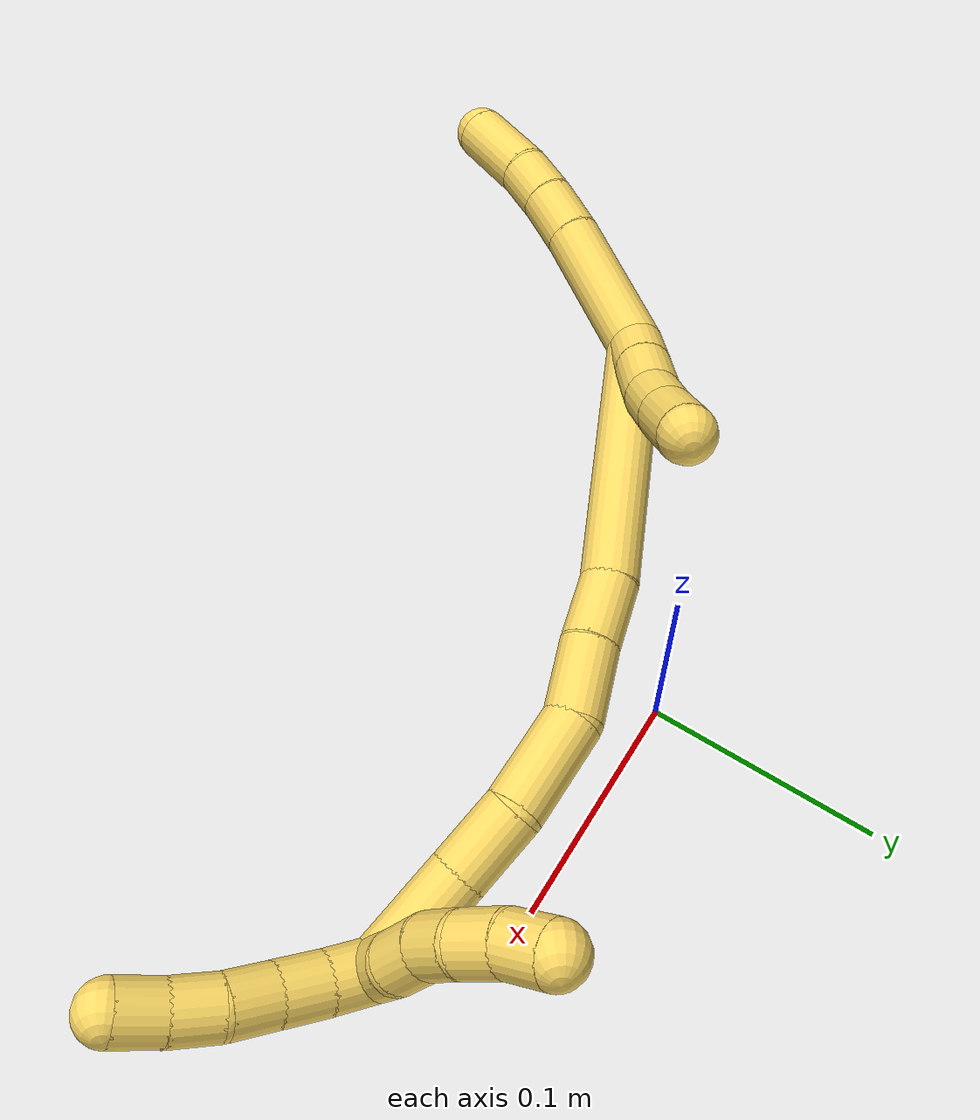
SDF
<sdf version="1.7">
 <world name="default">
  <model name="5">
   <static>0</static>
   <link name="5">
    <collision name="collision-cylinder-e_1_2_8">
     <pose>-0.002314 -0.017945 -0.027391 2.5616 -0.070558 -0.235449</pose>
     <geometry><cylinder><radius>0.0125</radius><length>0.065655</length></cylinder></geometry>
     <surface>
      <friction><ode><mu>1.16</mu><mu2>1.16</mu2><slip1>0</slip1><slip2>0</slip2></ode></friction>
      <contact><ode><kp>1e+06</kp><kd>1</kd><max_vel>0</max_vel><min_depth>0.001</min_depth></ode></contact>
     </surface>
    </collision>
    <visual name="visual-cylinder-e_1_2_8">
     <pose>-0.002314 -0.017945 -0.027391 2.5616 -0.070558 -0.235449</pose>
     <geometry><cylinder><radius>0.0125</radius><length>0.065655</length></cylinder></geometry>
     <material><ambient>1 0.858824 0.4 1</ambient></material>
    </visual>
    <collision name="collision-cylinder-e_2_8_9">
     <pose>-0.004668 -0.042634 -0.065287 2.57101 -0.003121 -0.01064</pose>
     <geometry><cylinder><radius>0.0125</radius><length>0.024967</length></cylinder></geometry>
     <surface>
      <friction><ode><mu>1.16</mu><mu2>1.16</mu2><slip1>0</slip1><slip2>0</slip2></ode></friction>
      <contact><ode><kp>1e+06</kp><kd>1</kd><max_vel>0</max_vel><min_depth>0.001</min_depth></ode></contact>
     </surface>
    </collision>
    <visual name="visual-cylinder-e_2_8_9">
     <pose>-0.004668 -0.042634 -0.065287 2.57101 -0.003121 -0.01064</pose>
     <geometry><cylinder><radius>0.0125</radius><length>0.024967</length></cylinder></geometry>
     <material><ambient>1 0.858824 0.4 1</ambient></material>
    </visual>
    <collision name="collision-cylinder-e_3_9_10">
     <pose>-0.003941 -0.054955 -0.084885 2.59122 0.071627 0.252439</pose>
     <geometry><cylinder><radius>0.0125</radius><length>0.02139</length></cylinder></geometry>
     <surface>
      <friction><ode><mu>1.16</mu><mu2>1.16</mu2><slip1>0</slip1><slip2>0</slip2></ode></friction>
      <contact><ode><kp>1e+06</kp><kd>1</kd><max_vel>0</max_vel><min_depth>0.001</min_depth></ode></contact>
     </surface>
    </collision>
    <visual name="visual-cylinder-e_3_9_10">
     <pose>-0.003941 -0.054955 -0.084885 2.59122 0.071627 0.252439</pose>
     <geometry><cylinder><radius>0.0125</radius><length>0.02139</length></cylinder></geometry>
     <material><ambient>1 0.858824 0.4 1</ambient></material>
    </visual>
    <collision name="collision-cylinder-e_4_10_6">
     <pose>0.000612 -0.069194 -0.110453 2.65765 0.200787 0.775015</pose>
     <geometry><cylinder><radius>0.0125</radius><length>0.037988</length></cylinder></geometry>
     <surface>
      <friction><ode><mu>1.16</mu><mu2>1.16</mu2><slip1>0</slip1><slip2>0</slip2></ode></friction>
      <contact><ode><kp>1e+06</kp><kd>1</kd><max_vel>0</max_vel><min_depth>0.001</min_depth></ode></contact>
     </surface>
    </collision>
    <visual name="visual-cylinder-e_4_10_6">
     <pose>0.000612 -0.069194 -0.110453 2.65765 0.200787 0.775015</pose>
     <geometry><cylinder><radius>0.0125</radius><length>0.037988</length></cylinder></geometry>
     <material><ambient>1 0.858824 0.4 1</ambient></material>
    </visual>
    <collision name="collision-cylinder-e_1_2_11">
     <pose>3e-06 -0.000403 0.010879 0.037035 0.000266 5e-06</pose>
     <geometry><cylinder><radius>0.0125</radius><length>0.021773</length></cylinder></geometry>
     <surface>
      <friction><ode><mu>1.16</mu><mu2>1.16</mu2><slip1>0</slip1><slip2>0</slip2></ode></friction>
      <contact><ode><kp>1e+06</kp><kd>1</kd><max_vel>0</max_vel><min_depth>0.001</min_depth></ode></contact>
     </surface>
    </collision>
    <visual name="visual-cylinder-e_1_2_11">
     <pose>3e-06 -0.000403 0.010879 0.037035 0.000266 5e-06</pose>
     <geometry><cylinder><radius>0.0125</radius><length>0.021773</length></cylinder></geometry>
     <material><ambient>1 0.858824 0.4 1</ambient></material>
    </visual>
    <collision name="collision-cylinder-e_2_11_12">
     <pose>0.000207 -0.001114 0.034324 0.024467 0.016008 0.000196</pose>
     <geometry><cylinder><radius>0.0125</radius><length>0.025143</length></cylinder></geometry>
     <surface>
      <friction><ode><mu>1.16</mu><mu2>1.16</mu2><slip1>0</slip1><slip2>0</slip2></ode></friction>
      <contact><ode><kp>1e+06</kp><kd>1</kd><max_vel>0</max_vel><min_depth>0.001</min_depth></ode></contact>
     </surface>
    </collision>
    <visual name="visual-cylinder-e_2_11_12">
     <pose>0.000207 -0.001114 0.034324 0.024467 0.016008 0.000196</pose>
     <geometry><cylinder><radius>0.0125</radius><length>0.025143</length></cylinder></geometry>
     <material><ambient>1 0.858824 0.4 1</ambient></material>
    </visual>
    <collision name="collision-cylinder-e_3_12_13">
     <pose>-0.001593 -0.002943 0.058699 0.128195 -0.166533 -0.010714</pose>
     <geometry><cylinder><radius>0.0125</radius><length>0.024148</length></cylinder></geometry>
     <surface>
      <friction><ode><mu>1.16</mu><mu2>1.16</mu2><slip1>0</slip1><slip2>0</slip2></ode></friction>
      <contact><ode><kp>1e+06</kp><kd>1</kd><max_vel>0</max_vel><min_depth>0.001</min_depth></ode></contact>
     </surface>
    </collision>
    <visual name="visual-cylinder-e_3_12_13">
     <pose>-0.001593 -0.002943 0.058699 0.128195 -0.166533 -0.010714</pose>
     <geometry><cylinder><radius>0.0125</radius><length>0.024148</length></cylinder></geometry>
     <material><ambient>1 0.858824 0.4 1</ambient></material>
    </visual>
    <collision name="collision-cylinder-e_4_13_5">
     <pose>-0.006768 -0.006888 0.084415 0.172432 -0.221145 -0.019191</pose>
     <geometry><cylinder><radius>0.0125</radius><length>0.028936</length></cylinder></geometry>
     <surface>
      <friction><ode><mu>1.16</mu><mu2>1.16</mu2><slip1>0</slip1><slip2>0</slip2></ode></friction>
      <contact><ode><kp>1e+06</kp><kd>1</kd><max_vel>0</max_vel><min_depth>0.001</min_depth></ode></contact>
     </surface>
    </collision>
    <visual name="visual-cylinder-e_4_13_5">
     <pose>-0.006768 -0.006888 0.084415 0.172432 -0.221145 -0.019191</pose>
     <geometry><cylinder><radius>0.0125</radius><length>0.028936</length></cylinder></geometry>
     <material><ambient>1 0.858824 0.4 1</ambient></material>
    </visual>
    <collision name="collision-cylinder-e_1_2_14">
     <pose>0.0291 0.011871 0.049168 -0.236911 0.522069 -0.063562</pose>
     <geometry><cylinder><radius>0.0125</radius><length>0.116709</length></cylinder></geometry>
     <surface>
      <friction><ode><mu>1.16</mu><mu2>1.16</mu2><slip1>0</slip1><slip2>0</slip2></ode></friction>
      <contact><ode><kp>1e+06</kp><kd>1</kd><max_vel>0</max_vel><min_depth>0.001</min_depth></ode></contact>
     </surface>
    </collision>
    <visual name="visual-cylinder-e_1_2_14">
     <pose>0.0291 0.011871 0.049168 -0.236911 0.522069 -0.063562</pose>
     <geometry><cylinder><radius>0.0125</radius><length>0.116709</length></cylinder></geometry>
     <material><ambient>1 0.858824 0.4 1</ambient></material>
    </visual>
    <collision name="collision-cylinder-e_2_14_15">
     <pose>0.066597 0.024239 0.110482 -0.040799 0.604534 -0.012724</pose>
     <geometry><cylinder><radius>0.0125</radius><length>0.029549</length></cylinder></geometry>
     <surface>
      <friction><ode><mu>1.16</mu><mu2>1.16</mu2><slip1>0</slip1><slip2>0</slip2></ode></friction>
      <contact><ode><kp>1e+06</kp><kd>1</kd><max_vel>0</max_vel><min_depth>0.001</min_depth></ode></contact>
     </surface>
    </collision>
    <visual name="visual-cylinder-e_2_14_15">
     <pose>0.066597 0.024239 0.110482 -0.040799 0.604534 -0.012724</pose>
     <geometry><cylinder><radius>0.0125</radius><length>0.029549</length></cylinder></geometry>
     <material><ambient>1 0.858824 0.4 1</ambient></material>
    </visual>
    <collision name="collision-cylinder-e_3_15_16">
     <pose>0.084269 0.02681 0.136208 -0.151666 0.593814 -0.046483</pose>
     <geometry><cylinder><radius>0.0125</radius><length>0.033151</length></cylinder></geometry>
     <surface>
      <friction><ode><mu>1.16</mu><mu2>1.16</mu2><slip1>0</slip1><slip2>0</slip2></ode></friction>
      <contact><ode><kp>1e+06</kp><kd>1</kd><max_vel>0</max_vel><min_depth>0.001</min_depth></ode></contact>
     </surface>
    </collision>
    <visual name="visual-cylinder-e_3_15_16">
     <pose>0.084269 0.02681 0.136208 -0.151666 0.593814 -0.046483</pose>
     <geometry><cylinder><radius>0.0125</radius><length>0.033151</length></cylinder></geometry>
     <material><ambient>1 0.858824 0.4 1</ambient></material>
    </visual>
    <collision name="collision-cylinder-e_4_16_17">
     <pose>0.109273 0.026088 0.164073 0.193384 0.824138 0.08474</pose>
     <geometry><cylinder><radius>0.0125</radius><length>0.042864</length></cylinder></geometry>
     <surface>
      <friction><ode><mu>1.16</mu><mu2>1.16</mu2><slip1>0</slip1><slip2>0</slip2></ode></friction>
      <contact><ode><kp>1e+06</kp><kd>1</kd><max_vel>0</max_vel><min_depth>0.001</min_depth></ode></contact>
     </surface>
    </collision>
    <visual name="visual-cylinder-e_4_16_17">
     <pose>0.109273 0.026088 0.164073 0.193384 0.824138 0.08474</pose>
     <geometry><cylinder><radius>0.0125</radius><length>0.042864</length></cylinder></geometry>
     <material><ambient>1 0.858824 0.4 1</ambient></material>
    </visual>
    <collision name="collision-cylinder-e_5_17_18">
     <pose>0.139264 0.021909 0.185382 0.194216 1.10556 0.120053</pose>
     <geometry><cylinder><radius>0.0125</radius><length>0.031913</length></cylinder></geometry>
     <surface>
      <friction><ode><mu>1.16</mu><mu2>1.16</mu2><slip1>0</slip1><slip2>0</slip2></ode></friction>
      <contact><ode><kp>1e+06</kp><kd>1</kd><max_vel>0</max_vel><min_depth>0.001</min_depth></ode></contact>
     </surface>
    </collision>
    <visual name="visual-cylinder-e_5_17_18">
     <pose>0.139264 0.021909 0.185382 0.194216 1.10556 0.120053</pose>
     <geometry><cylinder><radius>0.0125</radius><length>0.031913</length></cylinder></geometry>
     <material><ambient>1 0.858824 0.4 1</ambient></material>
    </visual>
    <collision name="collision-cylinder-e_6_18_1">
     <pose>0.173359 0.017607 0.203489 0.257638 1.04683 0.149235</pose>
     <geometry><cylinder><radius>0.0125</radius><length>0.045815</length></cylinder></geometry>
     <surface>
      <friction><ode><mu>1.16</mu><mu2>1.16</mu2><slip1>0</slip1><slip2>0</slip2></ode></friction>
      <contact><ode><kp>1e+06</kp><kd>1</kd><max_vel>0</max_vel><min_depth>0.001</min_depth></ode></contact>
     </surface>
    </collision>
    <visual name="visual-cylinder-e_6_18_1">
     <pose>0.173359 0.017607 0.203489 0.257638 1.04683 0.149235</pose>
     <geometry><cylinder><radius>0.0125</radius><length>0.045815</length></cylinder></geometry>
     <material><ambient>1 0.858824 0.4 1</ambient></material>
    </visual>
    <collision name="collision-cylinder-e_1_1_19">
     <pose>0.199152 0.007276 0.217666 1.17529 0.638367 0.433389</pose>
     <geometry><cylinder><radius>0.0125</radius><length>0.02</length></cylinder></geometry>
     <surface>
      <friction><ode><mu>1.16</mu><mu2>1.16</mu2><slip1>0</slip1><slip2>0</slip2></ode></friction>
      <contact><ode><kp>1e+06</kp><kd>1</kd><max_vel>0</max_vel><min_depth>0.001</min_depth></ode></contact>
     </surface>
    </collision>
    <visual name="visual-cylinder-e_1_1_19">
     <pose>0.199152 0.007276 0.217666 1.17529 0.638367 0.433389</pose>
     <geometry><cylinder><radius>0.0125</radius><length>0.02</length></cylinder></geometry>
     <material><ambient>1 0.858824 0.4 1</ambient></material>
    </visual>
    <collision name="collision-cylinder-e_2_19_20">
     <pose>0.210413 -0.007996 0.223934 1.18703 0.558838 0.382424</pose>
     <geometry><cylinder><radius>0.0125</radius><length>0.02</length></cylinder></geometry>
     <surface>
      <friction><ode><mu>1.16</mu><mu2>1.16</mu2><slip1>0</slip1><slip2>0</slip2></ode></friction>
      <contact><ode><kp>1e+06</kp><kd>1</kd><max_vel>0</max_vel><min_depth>0.001</min_depth></ode></contact>
     </surface>
    </collision>
    <visual name="visual-cylinder-e_2_19_20">
     <pose>0.210413 -0.007996 0.223934 1.18703 0.558838 0.382424</pose>
     <geometry><cylinder><radius>0.0125</radius><length>0.02</length></cylinder></geometry>
     <material><ambient>1 0.858824 0.4 1</ambient></material>
    </visual>
    <collision name="collision-cylinder-e_3_20_21">
     <pose>0.220387 -0.023946 0.230681 1.15484 0.486119 0.320319</pose>
     <geometry><cylinder><radius>0.0125</radius><length>0.02</length></cylinder></geometry>
     <surface>
      <friction><ode><mu>1.16</mu><mu2>1.16</mu2><slip1>0</slip1><slip2>0</slip2></ode></friction>
      <contact><ode><kp>1e+06</kp><kd>1</kd><max_vel>0</max_vel><min_depth>0.001</min_depth></ode></contact>
     </surface>
    </collision>
    <visual name="visual-cylinder-e_3_20_21">
     <pose>0.220387 -0.023946 0.230681 1.15484 0.486119 0.320319</pose>
     <geometry><cylinder><radius>0.0125</radius><length>0.02</length></cylinder></geometry>
     <material><ambient>1 0.858824 0.4 1</ambient></material>
    </visual>
    <collision name="collision-cylinder-e_4_21_22">
     <pose>0.230424 -0.040289 0.236003 1.36204 0.566312 0.463122</pose>
     <geometry><cylinder><radius>0.0125</radius><length>0.02</length></cylinder></geometry>
     <surface>
      <friction><ode><mu>1.16</mu><mu2>1.16</mu2><slip1>0</slip1><slip2>0</slip2></ode></friction>
      <contact><ode><kp>1e+06</kp><kd>1</kd><max_vel>0</max_vel><min_depth>0.001</min_depth></ode></contact>
     </surface>
    </collision>
    <visual name="visual-cylinder-e_4_21_22">
     <pose>0.230424 -0.040289 0.236003 1.36204 0.566312 0.463122</pose>
     <geometry><cylinder><radius>0.0125</radius><length>0.02</length></cylinder></geometry>
     <material><ambient>1 0.858824 0.4 1</ambient></material>
    </visual>
    <collision name="collision-cylinder-e_5_22_4">
     <pose>0.24015 -0.05743 0.239179 1.41148 0.451273 0.386337</pose>
     <geometry><cylinder><radius>0.0125</radius><length>0.02</length></cylinder></geometry>
     <surface>
      <friction><ode><mu>1.16</mu><mu2>1.16</mu2><slip1>0</slip1><slip2>0</slip2></ode></friction>
      <contact><ode><kp>1e+06</kp><kd>1</kd><max_vel>0</max_vel><min_depth>0.001</min_depth></ode></contact>
     </surface>
    </collision>
    <visual name="visual-cylinder-e_5_22_4">
     <pose>0.24015 -0.05743 0.239179 1.41148 0.451273 0.386337</pose>
     <geometry><cylinder><radius>0.0125</radius><length>0.02</length></cylinder></geometry>
     <material><ambient>1 0.858824 0.4 1</ambient></material>
    </visual>
    <collision name="collision-cylinder-e_1_1_23">
     <pose>0.185088 0.011589 0.219543 0.557295 -0.945036 -0.290405</pose>
     <geometry><cylinder><radius>0.0125</radius><length>0.02</length></cylinder></geometry>
     <surface>
      <friction><ode><mu>1.16</mu><mu2>1.16</mu2><slip1>0</slip1><slip2>0</slip2></ode></friction>
      <contact><ode><kp>1e+06</kp><kd>1</kd><max_vel>0</max_vel><min_depth>0.001</min_depth></ode></contact>
     </surface>
    </collision>
    <visual name="visual-cylinder-e_1_1_23">
     <pose>0.185088 0.011589 0.219543 0.557295 -0.945036 -0.290405</pose>
     <geometry><cylinder><radius>0.0125</radius><length>0.02</length></cylinder></geometry>
     <material><ambient>1 0.858824 0.4 1</ambient></material>
    </visual>
    <collision name="collision-cylinder-e_2_23_24">
     <pose>0.167595 0.00682 0.227527 0.506276 -1.21896 -0.35735</pose>
     <geometry><cylinder><radius>0.0125</radius><length>0.02</length></cylinder></geometry>
     <surface>
      <friction><ode><mu>1.16</mu><mu2>1.16</mu2><slip1>0</slip1><slip2>0</slip2></ode></friction>
      <contact><ode><kp>1e+06</kp><kd>1</kd><max_vel>0</max_vel><min_depth>0.001</min_depth></ode></contact>
     </surface>
    </collision>
    <visual name="visual-cylinder-e_2_23_24">
     <pose>0.167595 0.00682 0.227527 0.506276 -1.21896 -0.35735</pose>
     <geometry><cylinder><radius>0.0125</radius><length>0.02</length></cylinder></geometry>
     <material><ambient>1 0.858824 0.4 1</ambient></material>
    </visual>
    <collision name="collision-cylinder-e_3_24_25">
     <pose>0.14972 0.00445 0.235783 0.132665 -1.01364 -0.07373</pose>
     <geometry><cylinder><radius>0.0125</radius><length>0.02</length></cylinder></geometry>
     <surface>
      <friction><ode><mu>1.16</mu><mu2>1.16</mu2><slip1>0</slip1><slip2>0</slip2></ode></friction>
      <contact><ode><kp>1e+06</kp><kd>1</kd><max_vel>0</max_vel><min_depth>0.001</min_depth></ode></contact>
     </surface>
    </collision>
    <visual name="visual-cylinder-e_3_24_25">
     <pose>0.14972 0.00445 0.235783 0.132665 -1.01364 -0.07373</pose>
     <geometry><cylinder><radius>0.0125</radius><length>0.02</length></cylinder></geometry>
     <material><ambient>1 0.858824 0.4 1</ambient></material>
    </visual>
    <collision name="collision-cylinder-e_4_25_26">
     <pose>0.132449 0.005235 0.245568 -0.315694 -1.07239 0.18862</pose>
     <geometry><cylinder><radius>0.0125</radius><length>0.02</length></cylinder></geometry>
     <surface>
      <friction><ode><mu>1.16</mu><mu2>1.16</mu2><slip1>0</slip1><slip2>0</slip2></ode></friction>
      <contact><ode><kp>1e+06</kp><kd>1</kd><max_vel>0</max_vel><min_depth>0.001</min_depth></ode></contact>
     </surface>
    </collision>
    <visual name="visual-cylinder-e_4_25_26">
     <pose>0.132449 0.005235 0.245568 -0.315694 -1.07239 0.18862</pose>
     <geometry><cylinder><radius>0.0125</radius><length>0.02</length></cylinder></geometry>
     <material><ambient>1 0.858824 0.4 1</ambient></material>
    </visual>
    <collision name="collision-cylinder-e_5_26_3">
     <pose>0.11596 0.008925 0.256092 -0.353386 -0.879691 0.167659</pose>
     <geometry><cylinder><radius>0.0125</radius><length>0.02</length></cylinder></geometry>
     <surface>
      <friction><ode><mu>1.16</mu><mu2>1.16</mu2><slip1>0</slip1><slip2>0</slip2></ode></friction>
      <contact><ode><kp>1e+06</kp><kd>1</kd><max_vel>0</max_vel><min_depth>0.001</min_depth></ode></contact>
     </surface>
    </collision>
    <visual name="visual-cylinder-e_5_26_3">
     <pose>0.11596 0.008925 0.256092 -0.353386 -0.879691 0.167659</pose>
     <geometry><cylinder><radius>0.0125</radius><length>0.02</length></cylinder></geometry>
     <material><ambient>1 0.858824 0.4 1</ambient></material>
    </visual>
    <collision name="collision-sphere-3">
     <pose>0.108255 0.01113 0.262072 0 -0 0</pose>
     <geometry><sphere><radius>0.0125</radius></sphere></geometry>
     <surface>
      <friction><ode><mu>1.16</mu><mu2>1.16</mu2><slip1>0</slip1><slip2>0</slip2></ode></friction>
      <contact><ode><kp>1e+06</kp><kd>1</kd><max_vel>0</max_vel><min_depth>0.001</min_depth></ode></contact>
     </surface>
    </collision>
    <visual name="visual-sphere-3">
     <pose>0.108255 0.01113 0.262072 0 -0 0</pose>
     <geometry><sphere><radius>0.0125</radius></sphere></geometry>
     <material><ambient>1 0.858824 0.4 1</ambient></material>
    </visual>
    <collision name="collision-sphere-26">
     <pose>0.123666 0.006719 0.250112 0 -0 0</pose>
     <geometry><sphere><radius>0.0125</radius></sphere></geometry>
     <surface>
      <friction><ode><mu>1.16</mu><mu2>1.16</mu2><slip1>0</slip1><slip2>0</slip2></ode></friction>
      <contact><ode><kp>1e+06</kp><kd>1</kd><max_vel>0</max_vel><min_depth>0.001</min_depth></ode></contact>
     </surface>
    </collision>
    <visual name="visual-sphere-26">
     <pose>0.123666 0.006719 0.250112 0 -0 0</pose>
     <geometry><sphere><radius>0.0125</radius></sphere></geometry>
     <material><ambient>1 0.858824 0.4 1</ambient></material>
    </visual>
    <collision name="collision-sphere-25">
     <pose>0.141233 0.00375 0.241024 0 -0 0</pose>
     <geometry><sphere><radius>0.0125</radius></sphere></geometry>
     <surface>
      <friction><ode><mu>1.16</mu><mu2>1.16</mu2><slip1>0</slip1><slip2>0</slip2></ode></friction>
      <contact><ode><kp>1e+06</kp><kd>1</kd><max_vel>0</max_vel><min_depth>0.001</min_depth></ode></contact>
     </surface>
    </collision>
    <visual name="visual-sphere-25">
     <pose>0.141233 0.00375 0.241024 0 -0 0</pose>
     <geometry><sphere><radius>0.0125</radius></sphere></geometry>
     <material><ambient>1 0.858824 0.4 1</ambient></material>
    </visual>
    <collision name="collision-sphere-24">
     <pose>0.158208 0.005149 0.230541 0 -0 0</pose>
     <geometry><sphere><radius>0.0125</radius></sphere></geometry>
     <surface>
      <friction><ode><mu>1.16</mu><mu2>1.16</mu2><slip1>0</slip1><slip2>0</slip2></ode></friction>
      <contact><ode><kp>1e+06</kp><kd>1</kd><max_vel>0</max_vel><min_depth>0.001</min_depth></ode></contact>
     </surface>
    </collision>
    <visual name="visual-sphere-24">
     <pose>0.158208 0.005149 0.230541 0 -0 0</pose>
     <geometry><sphere><radius>0.0125</radius></sphere></geometry>
     <material><ambient>1 0.858824 0.4 1</ambient></material>
    </visual>
    <collision name="collision-sphere-23">
     <pose>0.176983 0.008492 0.224513 0 -0 0</pose>
     <geometry><sphere><radius>0.0125</radius></sphere></geometry>
     <surface>
      <friction><ode><mu>1.16</mu><mu2>1.16</mu2><slip1>0</slip1><slip2>0</slip2></ode></friction>
      <contact><ode><kp>1e+06</kp><kd>1</kd><max_vel>0</max_vel><min_depth>0.001</min_depth></ode></contact>
     </surface>
    </collision>
    <visual name="visual-sphere-23">
     <pose>0.176983 0.008492 0.224513 0 -0 0</pose>
     <geometry><sphere><radius>0.0125</radius></sphere></geometry>
     <material><ambient>1 0.858824 0.4 1</ambient></material>
    </visual>
    <collision name="collision-sphere-4">
     <pose>0.244512 -0.066315 0.240607 0 -0 0</pose>
     <geometry><sphere><radius>0.0125</radius></sphere></geometry>
     <surface>
      <friction><ode><mu>1.16</mu><mu2>1.16</mu2><slip1>0</slip1><slip2>0</slip2></ode></friction>
      <contact><ode><kp>1e+06</kp><kd>1</kd><max_vel>0</max_vel><min_depth>0.001</min_depth></ode></contact>
     </surface>
    </collision>
    <visual name="visual-sphere-4">
     <pose>0.244512 -0.066315 0.240607 0 -0 0</pose>
     <geometry><sphere><radius>0.0125</radius></sphere></geometry>
     <material><ambient>1 0.858824 0.4 1</ambient></material>
    </visual>
    <collision name="collision-sphere-22">
     <pose>0.235789 -0.048545 0.237752 0 -0 0</pose>
     <geometry><sphere><radius>0.0125</radius></sphere></geometry>
     <surface>
      <friction><ode><mu>1.16</mu><mu2>1.16</mu2><slip1>0</slip1><slip2>0</slip2></ode></friction>
      <contact><ode><kp>1e+06</kp><kd>1</kd><max_vel>0</max_vel><min_depth>0.001</min_depth></ode></contact>
     </surface>
    </collision>
    <visual name="visual-sphere-22">
     <pose>0.235789 -0.048545 0.237752 0 -0 0</pose>
     <geometry><sphere><radius>0.0125</radius></sphere></geometry>
     <material><ambient>1 0.858824 0.4 1</ambient></material>
    </visual>
    <collision name="collision-sphere-21">
     <pose>0.225059 -0.032033 0.234254 0 -0 0</pose>
     <geometry><sphere><radius>0.0125</radius></sphere></geometry>
     <surface>
      <friction><ode><mu>1.16</mu><mu2>1.16</mu2><slip1>0</slip1><slip2>0</slip2></ode></friction>
      <contact><ode><kp>1e+06</kp><kd>1</kd><max_vel>0</max_vel><min_depth>0.001</min_depth></ode></contact>
     </surface>
    </collision>
    <visual name="visual-sphere-21">
     <pose>0.225059 -0.032033 0.234254 0 -0 0</pose>
     <geometry><sphere><radius>0.0125</radius></sphere></geometry>
     <material><ambient>1 0.858824 0.4 1</ambient></material>
    </visual>
    <collision name="collision-sphere-20">
     <pose>0.215715 -0.015858 0.227109 0 -0 0</pose>
     <geometry><sphere><radius>0.0125</radius></sphere></geometry>
     <surface>
      <friction><ode><mu>1.16</mu><mu2>1.16</mu2><slip1>0</slip1><slip2>0</slip2></ode></friction>
      <contact><ode><kp>1e+06</kp><kd>1</kd><max_vel>0</max_vel><min_depth>0.001</min_depth></ode></contact>
     </surface>
    </collision>
    <visual name="visual-sphere-20">
     <pose>0.215715 -0.015858 0.227109 0 -0 0</pose>
     <geometry><sphere><radius>0.0125</radius></sphere></geometry>
     <material><ambient>1 0.858824 0.4 1</ambient></material>
    </visual>
    <collision name="collision-sphere-11">
     <pose>6e-06 -0.000806 0.021758 0 -0 0</pose>
     <geometry><sphere><radius>0.0125</radius></sphere></geometry>
     <surface>
      <friction><ode><mu>1.16</mu><mu2>1.16</mu2><slip1>0</slip1><slip2>0</slip2></ode></friction>
      <contact><ode><kp>1e+06</kp><kd>1</kd><max_vel>0</max_vel><min_depth>0.001</min_depth></ode></contact>
     </surface>
    </collision>
    <visual name="visual-sphere-11">
     <pose>6e-06 -0.000806 0.021758 0 -0 0</pose>
     <geometry><sphere><radius>0.0125</radius></sphere></geometry>
     <material><ambient>1 0.858824 0.4 1</ambient></material>
    </visual>
    <collision name="collision-sphere-6">
     <pose>0.004401 -0.077854 -0.126928 0 -0 0</pose>
     <geometry><sphere><radius>0.0125</radius></sphere></geometry>
     <surface>
      <friction><ode><mu>1.16</mu><mu2>1.16</mu2><slip1>0</slip1><slip2>0</slip2></ode></friction>
      <contact><ode><kp>1e+06</kp><kd>1</kd><max_vel>0</max_vel><min_depth>0.001</min_depth></ode></contact>
     </surface>
    </collision>
    <visual name="visual-sphere-6">
     <pose>0.004401 -0.077854 -0.126928 0 -0 0</pose>
     <geometry><sphere><radius>0.0125</radius></sphere></geometry>
     <material><ambient>1 0.858824 0.4 1</ambient></material>
    </visual>
    <collision name="collision-sphere-10">
     <pose>-0.003176 -0.060534 -0.093978 0 -0 0</pose>
     <geometry><sphere><radius>0.0125</radius></sphere></geometry>
     <surface>
      <friction><ode><mu>1.16</mu><mu2>1.16</mu2><slip1>0</slip1><slip2>0</slip2></ode></friction>
      <contact><ode><kp>1e+06</kp><kd>1</kd><max_vel>0</max_vel><min_depth>0.001</min_depth></ode></contact>
     </surface>
    </collision>
    <visual name="visual-sphere-10">
     <pose>-0.003176 -0.060534 -0.093978 0 -0 0</pose>
     <geometry><sphere><radius>0.0125</radius></sphere></geometry>
     <material><ambient>1 0.858824 0.4 1</ambient></material>
    </visual>
    <collision name="collision-sphere-9">
     <pose>-0.004707 -0.049376 -0.075793 0 -0 0</pose>
     <geometry><sphere><radius>0.0125</radius></sphere></geometry>
     <surface>
      <friction><ode><mu>1.16</mu><mu2>1.16</mu2><slip1>0</slip1><slip2>0</slip2></ode></friction>
      <contact><ode><kp>1e+06</kp><kd>1</kd><max_vel>0</max_vel><min_depth>0.001</min_depth></ode></contact>
     </surface>
    </collision>
    <visual name="visual-sphere-9">
     <pose>-0.004707 -0.049376 -0.075793 0 -0 0</pose>
     <geometry><sphere><radius>0.0125</radius></sphere></geometry>
     <material><ambient>1 0.858824 0.4 1</ambient></material>
    </visual>
    <collision name="collision-sphere-2">
     <geometry><sphere><radius>0.0125</radius></sphere></geometry>
     <surface>
      <friction><ode><mu>1.16</mu><mu2>1.16</mu2><slip1>0</slip1><slip2>0</slip2></ode></friction>
      <contact><ode><kp>1e+06</kp><kd>1</kd><max_vel>0</max_vel><min_depth>0.001</min_depth></ode></contact>
     </surface>
    </collision>
    <visual name="visual-sphere-2">
     <geometry><sphere><radius>0.0125</radius></sphere></geometry>
     <material><ambient>1 0.858824 0.4 1</ambient></material>
    </visual>
    <collision name="collision-sphere-19">
     <pose>0.205111 -0.000134 0.22076 0 -0 0</pose>
     <geometry><sphere><radius>0.0125</radius></sphere></geometry>
     <surface>
      <friction><ode><mu>1.16</mu><mu2>1.16</mu2><slip1>0</slip1><slip2>0</slip2></ode></friction>
      <contact><ode><kp>1e+06</kp><kd>1</kd><max_vel>0</max_vel><min_depth>0.001</min_depth></ode></contact>
     </surface>
    </collision>
    <visual name="visual-sphere-19">
     <pose>0.205111 -0.000134 0.22076 0 -0 0</pose>
     <geometry><sphere><radius>0.0125</radius></sphere></geometry>
     <material><ambient>1 0.858824 0.4 1</ambient></material>
    </visual>
    <collision name="collision-sphere-8">
     <pose>-0.004629 -0.035891 -0.054782 0 -0 0</pose>
     <geometry><sphere><radius>0.0125</radius></sphere></geometry>
     <surface>
      <friction><ode><mu>1.16</mu><mu2>1.16</mu2><slip1>0</slip1><slip2>0</slip2></ode></friction>
      <contact><ode><kp>1e+06</kp><kd>1</kd><max_vel>0</max_vel><min_depth>0.001</min_depth></ode></contact>
     </surface>
    </collision>
    <visual name="visual-sphere-8">
     <pose>-0.004629 -0.035891 -0.054782 0 -0 0</pose>
     <geometry><sphere><radius>0.0125</radius></sphere></geometry>
     <material><ambient>1 0.858824 0.4 1</ambient></material>
    </visual>
    <collision name="collision-sphere-12">
     <pose>0.000408 -0.001421 0.046889 0 -0 0</pose>
     <geometry><sphere><radius>0.0125</radius></sphere></geometry>
     <surface>
      <friction><ode><mu>1.16</mu><mu2>1.16</mu2><slip1>0</slip1><slip2>0</slip2></ode></friction>
      <contact><ode><kp>1e+06</kp><kd>1</kd><max_vel>0</max_vel><min_depth>0.001</min_depth></ode></contact>
     </surface>
    </collision>
    <visual name="visual-sphere-12">
     <pose>0.000408 -0.001421 0.046889 0 -0 0</pose>
     <geometry><sphere><radius>0.0125</radius></sphere></geometry>
     <material><ambient>1 0.858824 0.4 1</ambient></material>
    </visual>
    <collision name="collision-sphere-13">
     <pose>-0.003595 -0.004466 0.070508 0 -0 0</pose>
     <geometry><sphere><radius>0.0125</radius></sphere></geometry>
     <surface>
      <friction><ode><mu>1.16</mu><mu2>1.16</mu2><slip1>0</slip1><slip2>0</slip2></ode></friction>
      <contact><ode><kp>1e+06</kp><kd>1</kd><max_vel>0</max_vel><min_depth>0.001</min_depth></ode></contact>
     </surface>
    </collision>
    <visual name="visual-sphere-13">
     <pose>-0.003595 -0.004466 0.070508 0 -0 0</pose>
     <geometry><sphere><radius>0.0125</radius></sphere></geometry>
     <material><ambient>1 0.858824 0.4 1</ambient></material>
    </visual>
    <collision name="collision-sphere-5">
     <pose>-0.009942 -0.00931 0.098321 0 -0 0</pose>
     <geometry><sphere><radius>0.0125</radius></sphere></geometry>
     <surface>
      <friction><ode><mu>1.16</mu><mu2>1.16</mu2><slip1>0</slip1><slip2>0</slip2></ode></friction>
      <contact><ode><kp>1e+06</kp><kd>1</kd><max_vel>0</max_vel><min_depth>0.001</min_depth></ode></contact>
     </surface>
    </collision>
    <visual name="visual-sphere-5">
     <pose>-0.009942 -0.00931 0.098321 0 -0 0</pose>
     <geometry><sphere><radius>0.0125</radius></sphere></geometry>
     <material><ambient>1 0.858824 0.4 1</ambient></material>
    </visual>
    <collision name="collision-sphere-14">
     <pose>0.0582 0.023743 0.098337 0 -0 0</pose>
     <geometry><sphere><radius>0.0125</radius></sphere></geometry>
     <surface>
      <friction><ode><mu>1.16</mu><mu2>1.16</mu2><slip1>0</slip1><slip2>0</slip2></ode></friction>
      <contact><ode><kp>1e+06</kp><kd>1</kd><max_vel>0</max_vel><min_depth>0.001</min_depth></ode></contact>
     </surface>
    </collision>
    <visual name="visual-sphere-14">
     <pose>0.0582 0.023743 0.098337 0 -0 0</pose>
     <geometry><sphere><radius>0.0125</radius></sphere></geometry>
     <material><ambient>1 0.858824 0.4 1</ambient></material>
    </visual>
    <collision name="collision-sphere-15">
     <pose>0.074995 0.024735 0.122628 0 -0 0</pose>
     <geometry><sphere><radius>0.0125</radius></sphere></geometry>
     <surface>
      <friction><ode><mu>1.16</mu><mu2>1.16</mu2><slip1>0</slip1><slip2>0</slip2></ode></friction>
      <contact><ode><kp>1e+06</kp><kd>1</kd><max_vel>0</max_vel><min_depth>0.001</min_depth></ode></contact>
     </surface>
    </collision>
    <visual name="visual-sphere-15">
     <pose>0.074995 0.024735 0.122628 0 -0 0</pose>
     <geometry><sphere><radius>0.0125</radius></sphere></geometry>
     <material><ambient>1 0.858824 0.4 1</ambient></material>
    </visual>
    <collision name="collision-sphere-16">
     <pose>0.093543 0.028886 0.149788 0 -0 0</pose>
     <geometry><sphere><radius>0.0125</radius></sphere></geometry>
     <surface>
      <friction><ode><mu>1.16</mu><mu2>1.16</mu2><slip1>0</slip1><slip2>0</slip2></ode></friction>
      <contact><ode><kp>1e+06</kp><kd>1</kd><max_vel>0</max_vel><min_depth>0.001</min_depth></ode></contact>
     </surface>
    </collision>
    <visual name="visual-sphere-16">
     <pose>0.093543 0.028886 0.149788 0 -0 0</pose>
     <geometry><sphere><radius>0.0125</radius></sphere></geometry>
     <material><ambient>1 0.858824 0.4 1</ambient></material>
    </visual>
    <collision name="collision-sphere-17">
     <pose>0.125004 0.023291 0.178358 0 -0 0</pose>
     <geometry><sphere><radius>0.0125</radius></sphere></geometry>
     <surface>
      <friction><ode><mu>1.16</mu><mu2>1.16</mu2><slip1>0</slip1><slip2>0</slip2></ode></friction>
      <contact><ode><kp>1e+06</kp><kd>1</kd><max_vel>0</max_vel><min_depth>0.001</min_depth></ode></contact>
     </surface>
    </collision>
    <visual name="visual-sphere-17">
     <pose>0.125004 0.023291 0.178358 0 -0 0</pose>
     <geometry><sphere><radius>0.0125</radius></sphere></geometry>
     <material><ambient>1 0.858824 0.4 1</ambient></material>
    </visual>
    <collision name="collision-sphere-18">
     <pose>0.153524 0.020528 0.192406 0 -0 0</pose>
     <geometry><sphere><radius>0.0125</radius></sphere></geometry>
     <surface>
      <friction><ode><mu>1.16</mu><mu2>1.16</mu2><slip1>0</slip1><slip2>0</slip2></ode></friction>
      <contact><ode><kp>1e+06</kp><kd>1</kd><max_vel>0</max_vel><min_depth>0.001</min_depth></ode></contact>
     </surface>
    </collision>
    <visual name="visual-sphere-18">
     <pose>0.153524 0.020528 0.192406 0 -0 0</pose>
     <geometry><sphere><radius>0.0125</radius></sphere></geometry>
     <material><ambient>1 0.858824 0.4 1</ambient></material>
    </visual>
    <collision name="collision-sphere-1">
     <pose>0.193193 0.014687 0.214572 0 -0 0</pose>
     <geometry><sphere><radius>0.0125</radius></sphere></geometry>
     <surface>
      <friction><ode><mu>1.16</mu><mu2>1.16</mu2><slip1>0</slip1><slip2>0</slip2></ode></friction>
      <contact><ode><kp>1e+06</kp><kd>1</kd><max_vel>0</max_vel><min_depth>0.001</min_depth></ode></contact>
     </surface>
    </collision>
    <visual name="visual-sphere-1">
     <pose>0.193193 0.014687 0.214572 0 -0 0</pose>
     <geometry><sphere><radius>0.0125</radius></sphere></geometry>
     <material><ambient>1 0.858824 0.4 1</ambient></material>
    </visual>
    <inertial>
     <pose>0.082262 -0.003262 0.103933 0 -0 0</pose>
     <mass>0.75</mass>
     <inertia>
      <ixx>0.000195</ixx>
      <ixy>0</ixy>
      <ixz>0</ixz>
      <iyy>0.000137</iyy>
      <iyz>0</iyz>
      <izz>-6.6e-05</izz>
     </inertia>
    </inertial>
   </link>
   <pose>-0.131335 -0.088429 0.04542 -1.043 0.612485 -0.553667</pose>
  </model>
 </world>
</sdf>
